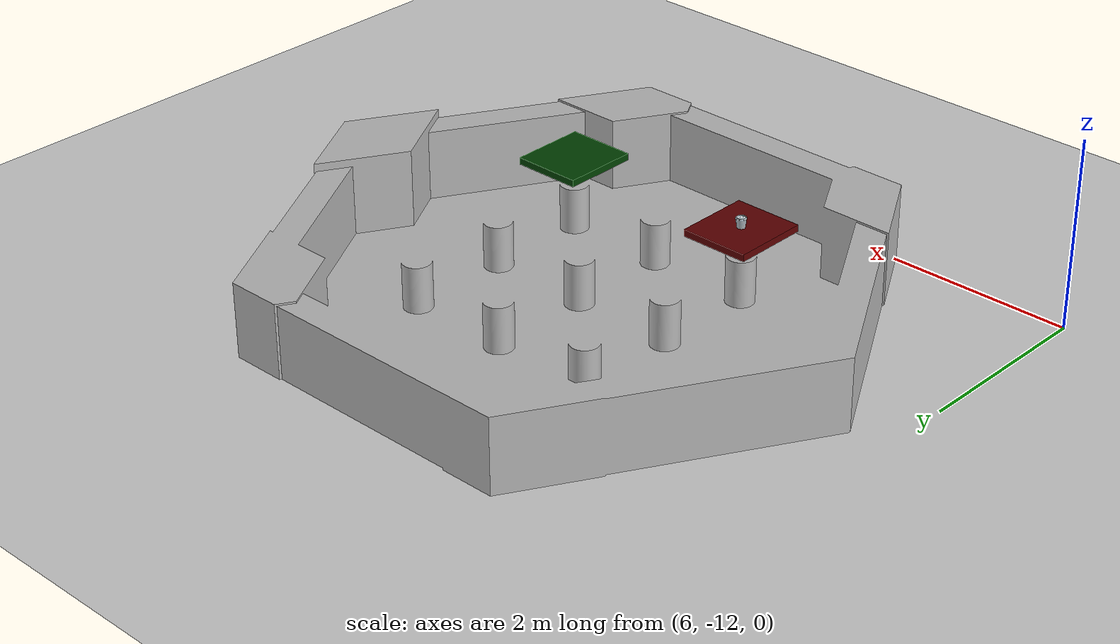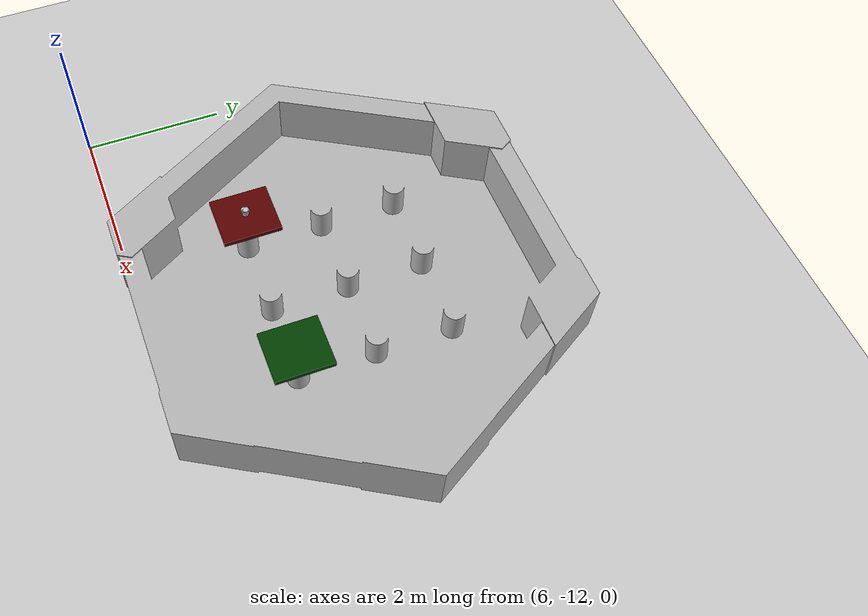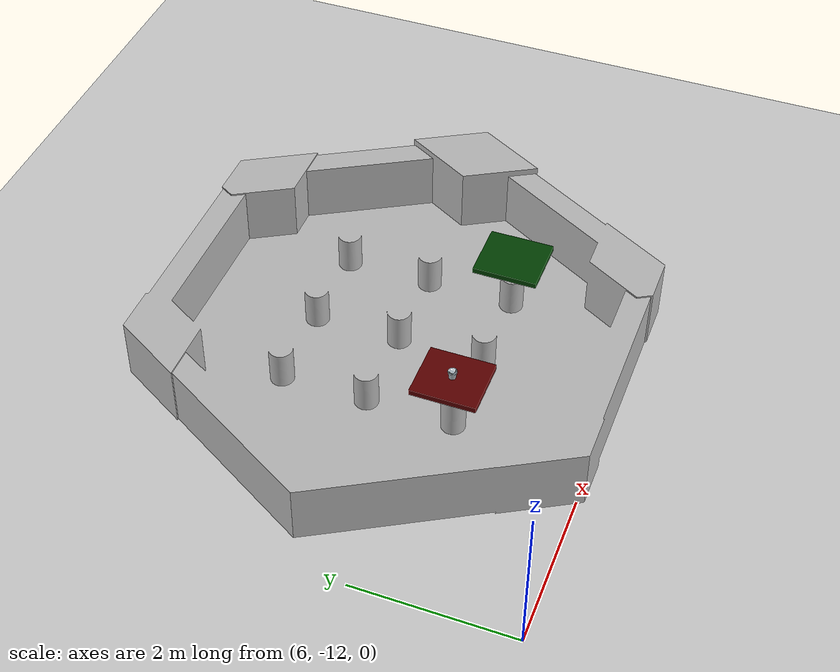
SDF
<?xml version="1.0"?>
<sdf version="1.6">
  <world name="default">

    <include>
      <uri>model://ground_plane</uri>
    </include>

    <include>
      <uri>model://sun</uri>
    </include>

    <scene>
      <shadows>false</shadows>
    </scene>

    <gui fullscreen='0'>
      <camera name='user_camera'>
        <pose frame=''>0.319654 -0.235002 9.29441 0 1.5138 0.009599</pose>
        <view_controller>orbit</view_controller>
        <projection_type>perspective</projection_type>
      </camera>
    </gui>

    <physics type="ode">
      <real_time_update_rate>1000.0</real_time_update_rate>
      <max_step_size>0.001</max_step_size>
      <real_time_factor>1</real_time_factor>
      <ode>
        <solver>
          <type>quick</type>
          <iters>150</iters>
          <precon_iters>0</precon_iters>
          <sor>1.400000</sor>
          <use_dynamic_moi_rescaling>1</use_dynamic_moi_rescaling>
        </solver>
        <constraints>
          <cfm>0.00001</cfm>
          <erp>0.2</erp>
          <contact_max_correcting_vel>2000.000000</contact_max_correcting_vel>
          <contact_surface_layer>0.01000</contact_surface_layer>
        </constraints>
      </ode>
    </physics>

    <model name="turtlebot_env">
      <static>1</static>
      <include>
        <uri>model://turtlebot_env</uri>
      </include>
      <pose>9.699500 -9.198589 -0.044076 0 0 0</pose>
    </model>

    <model name="bartender_dispenser_1">
      <static>1</static>
      <include>
        <uri>model://bartender_dispenser</uri>
      </include>
      <pose>8.593634 -10.277875 0 0 0 0</pose>
    </model>

    <model name="portable_cup_2">
      <static>0</static>
      <include>
        <uri>model://portable_cup_2</uri>
      </include>
      <pose>8.593634 -10.277875 0.825669 0 0 0</pose>
    </model>

    <model name="table_ingestor_1">
      <static>1</static>
      <include>
        <uri>model://table_ingestor</uri>
      </include>
      <pose>10.796878 -10.290632 0 0 0 0</pose>
    </model>

    <light name='user_point_light_2' type='point'>
      <pose frame=''>9.5 -9.0 4.0 0 0 0</pose>
      <diffuse>0.2 0.2 0.2 1</diffuse>
      <specular>0.1 0.1 0.1 1</specular>
      <attenuation>
        <range>10</range>
        <constant>0.5</constant>
        <linear>0.01</linear>
        <quadratic>0.001</quadratic>
      </attenuation>
      <cast_shadows>0</cast_shadows>
      <direction>0 0 -1</direction>
    </light>

  </world>
</sdf>

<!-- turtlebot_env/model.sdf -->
<sdf version="1.6">
  <model name="turtlebot_env">
    <pose>0.0 0.0 0.0 0.0 0.0 0.0</pose>
    <static>true</static>

    <link name="bartender_main_link">
      <pose>0.0 0.0 0.05 0.0 0.0 0.0</pose>

      <collision name="collision">
        <pose>0 0 0 0 0 0</pose>
        <geometry>
          <mesh>
            <uri>model://turtlebot_env/meshes/turtlebot_env_col.stl</uri>
          </mesh>
        </geometry>
      </collision>

      <visual name="visual_walls">
        <pose>0 0 0 0 0 0</pose>
        <geometry>
          <mesh>
            <uri>model://turtlebot_env/meshes/turtlebot_env_HD.dae</uri>
          </mesh>
        </geometry>
      </visual>

    </link>

  </model>
</sdf>

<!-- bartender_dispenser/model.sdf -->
<sdf version="1.6">
  <model name="bartender_dispenser">
    <pose>0.0 0.0 0.0 0.0 0.0 0.0</pose>
    <static>true</static>

    <link name="bartender_main_link">
      <pose>0.0 0.0 0.05 0.0 0.0 0.0</pose>

      <collision name="collision">
        <pose>0 0 0.733276 0 0 0</pose>
        <geometry>
          <box>
            <size>0.737096 0.810806 0.07371</size>
          </box>
        </geometry>
      </collision>

      <visual name="visual">
        <pose>0 0 0 0 0 0</pose>
        <geometry>
          <mesh>
            <uri>model://bartender_dispenser/meshes/table_dispenser_nolegs.dae</uri>
          </mesh>
        </geometry>
      </visual>
    </link>

    <plugin name="teleport_dispenser" filename="libteleport_dispenser.so">
    </plugin>

  </model>
</sdf>

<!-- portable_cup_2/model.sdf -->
<sdf version="1.5">
  <model name="portable_cup_2">
    <static>false</static>
    <link name="link">
      <inertial>
        <pose>0 0 0 0 0 0</pose>
        <mass>0.1</mass>
        <inertia>
          <ixx>0.0003325</ixx>
          <ixy>0</ixy>
          <ixz>0</ixz>
          <iyy>0.0003325</iyy>
          <iyz>0</iyz>
          <izz>0.00012500000000000003</izz>
        </inertia>
      </inertial>

      <collision name="col_portable_cup_2">
        <pose>0 0 0 0 0 0</pose>
        <geometry>
          <mesh>
            <uri>model://portable_cup_2/meshes/cup_col.stl</uri>
          </mesh>
        </geometry>
        <surface>
          <friction>
            <ode>
              <mu>0.01</mu>
              <mu2>0.01</mu2>
            </ode>
          </friction>
          <contact>
            <ode>
              <kp>10000000.0</kp>
              <kd>10000000.0</kd>
              <min_depth>0.001</min_depth>
              <max_vel>1.1</max_vel>
            </ode>
          </contact>
        </surface>
      </collision>

      <visual name="visual_portable_cup_2">
        <pose>0 0 0 0 0 0</pose>
        <geometry>
          <mesh>
            <uri>model://portable_cup_2/meshes/portable_cup_2.dae</uri>
          </mesh>
        </geometry>
      </visual>
    </link>

  </model>
</sdf>

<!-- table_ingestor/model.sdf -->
<sdf version="1.6">
  <model name="table_ingestor">
    <pose>0.0 0.0 0.0 0.0 0.0 0.0</pose>
    <static>true</static>

    <link name="bartender_main_link">
      <pose>0.0 0.0 0.05 0.0 0.0 0.0</pose>

      <collision name="collision">
        <pose>0 0 0.733276 0 0 0</pose>
        <geometry>
          <box>
            <size>0.737096 0.810806 0.07371</size>
          </box>
        </geometry>
      </collision>

      <visual name="visual">
        <pose>0 0 0 0 0 0</pose>
        <geometry>
          <mesh>
            <uri>model://table_ingestor/meshes/voxeltable_nolegs.dae</uri>
          </mesh>
        </geometry>
      </visual>
    </link>

     <plugin name="teleport_ingestor" filename="libteleport_ingestor.so">
    </plugin>

  </model>
</sdf>
